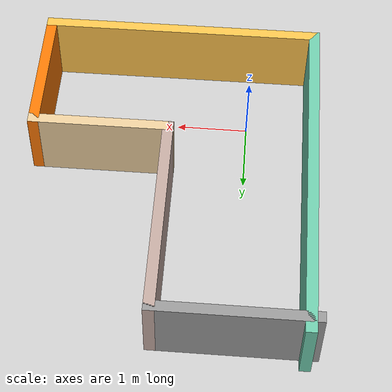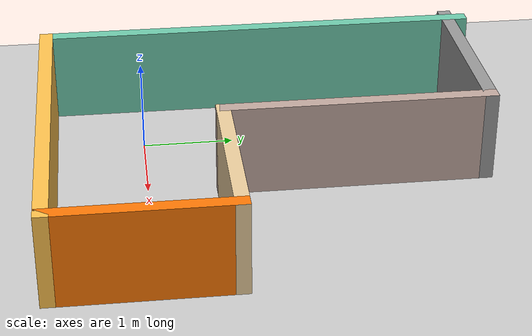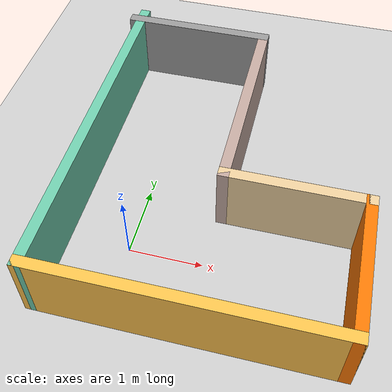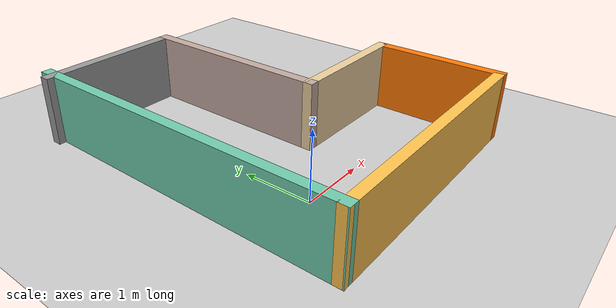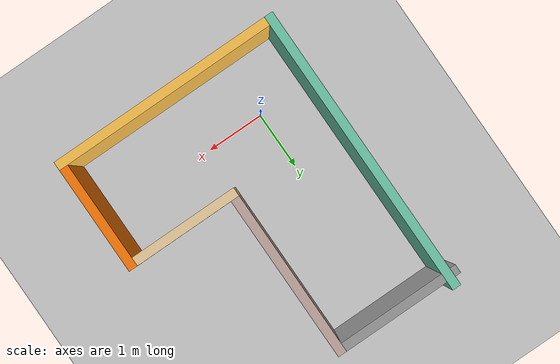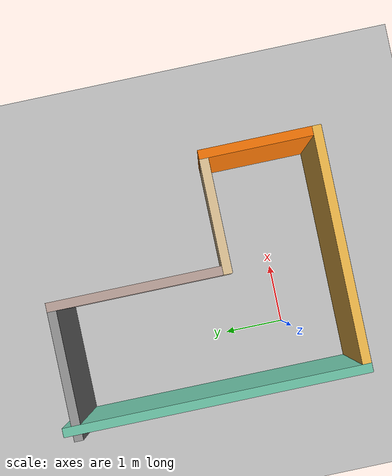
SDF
<sdf version="1.6">
 <world name="default">
  <light name="sun" type="directional">
   <pose>0 0 10 0 -0 0</pose>
   <diffuse>0.8 0.8 0.8 1</diffuse>
   <specular>0.2 0.2 0.2 1</specular>
   <attenuation>
    <range>1000</range>
    <constant>0.9</constant>
    <linear>0.01</linear>
    <quadratic>0.001</quadratic>
   </attenuation>
   <direction>-0.5 0.1 -0.9</direction>
  </light>
  <model name="ground_plane">
   <static>1</static>
   <link name="link">
    <collision name="collision">
     <geometry><plane><normal>0 0 1</normal><size>100 100</size></plane></geometry>
     <surface>
      <contact><collide_bitmask>65535</collide_bitmask></contact>
      <friction><ode><mu>100</mu><mu2>50</mu2></ode></friction>
     </surface>
    </collision>
    <visual name="visual">
     <cast_shadows>0</cast_shadows>
     <geometry><plane><normal>0 0 1</normal><size>100 100</size></plane></geometry>
     <material>
      <script><uri>file://media/materials/scripts/gazebo.material</uri><name>Gazebo/Grey</name></script>
     </material>
    </visual>
   </link>
  </model>
  <gravity>0 0 -9.8</gravity>
  <magnetic_field>6e-06 2.3e-05 -4.2e-05</magnetic_field>
  <atmosphere type="adiabatic"/>
  <physics name="default_physics" default="0" type="ode">
   <max_step_size>0.001</max_step_size>
   <real_time_factor>1</real_time_factor>
   <real_time_update_rate>1000</real_time_update_rate>
  </physics>
  <scene><ambient>0.4 0.4 0.4 1</ambient><background>0.7 0.7 0.7 1</background><shadows>1</shadows></scene>
  <spherical_coordinates>
   <surface_model>EARTH_WGS84</surface_model>
   <latitude_deg>0</latitude_deg>
   <longitude_deg>0</longitude_deg>
   <elevation>0</elevation>
   <heading_deg>0</heading_deg>
  </spherical_coordinates>
  <model name="L">
   <pose>0.967283 1.3832 0 0 -0 0</pose>
   <link name="Wall_0">
    <collision name="Wall_0_Collision">
     <geometry><box><size>5 0.15 1</size></box></geometry>
     <pose>0 0 0.5 0 -0 0</pose>
    </collision>
    <visual name="Wall_0_Visual">
     <pose>0 0 0.5 0 -0 0</pose>
     <geometry><box><size>5 0.15 1</size></box></geometry>
     <material>
      <script><uri>file://media/materials/scripts/gazebo.material</uri><name>Gazebo/Grey</name></script>
      <ambient>0.435294 0.796078 0.67451 1</ambient>
     </material>
     <meta><layer>0</layer></meta>
    </visual>
    <pose>-1.87462 0 0 0 0 -1.571</pose>
   </link>
   <link name="Wall_1">
    <collision name="Wall_1_Collision">
     <geometry><box><size>4 0.15 1</size></box></geometry>
     <pose>0 0 0.5 0 -0 0</pose>
    </collision>
    <visual name="Wall_1_Visual">
     <pose>0 0 0.5 0 -0 0</pose>
     <geometry><box><size>4 0.15 1</size></box></geometry>
     <material>
      <script><uri>file://media/materials/scripts/gazebo.material</uri><name>Gazebo/Grey</name></script>
      <ambient>1 0.764706 0.305882 1</ambient>
     </material>
     <meta><layer>0</layer></meta>
    </visual>
    <pose>0.049875 -2.425 0 0 -0 0</pose>
   </link>
   <link name="Wall_2">
    <collision name="Wall_2_Collision">
     <geometry><box><size>2 0.15 1</size></box></geometry>
     <pose>0 0 0.5 0 -0 0</pose>
    </collision>
    <visual name="Wall_2_Visual">
     <pose>0 0 0.5 0 -0 0</pose>
     <geometry><box><size>2 0.15 1</size></box></geometry>
     <material>
      <script><uri>file://media/materials/scripts/gazebo.material</uri><name>Gazebo/Grey</name></script>
      <ambient>0.996078 0.47451 0.0196078 1</ambient>
     </material>
     <meta><layer>0</layer></meta>
    </visual>
    <pose>1.97487 -1.5 0 0 -0 1.5708</pose>
   </link>
   <link name="Wall_3">
    <collision name="Wall_3_Collision">
     <geometry><box><size>2.0115 0.15 1</size></box></geometry>
     <pose>0 0 0.5 0 -0 0</pose>
    </collision>
    <visual name="Wall_3_Visual">
     <pose>0 0 0.5 0 -0 0</pose>
     <geometry><box><size>2.0115 0.15 1</size></box></geometry>
     <material>
      <script><uri>file://media/materials/scripts/gazebo.material</uri><name>Gazebo/Grey</name></script>
      <ambient>0.921569 0.807843 0.615686 1</ambient>
     </material>
     <meta><layer>0</layer></meta>
    </visual>
    <pose>1.04438 -0.575 0 0 -0 3.14159</pose>
   </link>
   <link name="Wall_4">
    <collision name="Wall_4_Collision">
     <geometry><box><size>3 0.15 1</size></box></geometry>
     <pose>0 0 0.5 0 -0 0</pose>
    </collision>
    <visual name="Wall_4_Visual">
     <pose>0 0 0.5 0 -0 0</pose>
     <geometry><box><size>3 0.15 1</size></box></geometry>
     <material>
      <script><uri>file://media/materials/scripts/gazebo.material</uri><name>Gazebo/Grey</name></script>
      <ambient>0.760784 0.662745 0.627451 1</ambient>
     </material>
     <meta><layer>0</layer></meta>
    </visual>
    <pose>0.113875 0.85 0 0 -0 1.5708</pose>
   </link>
   <link name="Wall_5">
    <collision name="Wall_5_Collision">
     <geometry><box><size>2.239 0.15 1</size></box></geometry>
     <pose>0 0 0.5 0 -0 0</pose>
    </collision>
    <visual name="Wall_5_Visual">
     <pose>0 0 0.5 0 -0 0</pose>
     <geometry><box><size>2.239 0.15 1</size></box></geometry>
     <material>
      <script><uri>file://media/materials/scripts/gazebo.material</uri><name>Gazebo/Grey</name></script>
      <ambient>1 1 1 1</ambient>
     </material>
     <meta><layer>0</layer></meta>
    </visual>
    <pose>-0.930625 2.275 0 0 -0 3.14159</pose>
   </link>
   <static>1</static>
  </model>
 </world>
</sdf>
